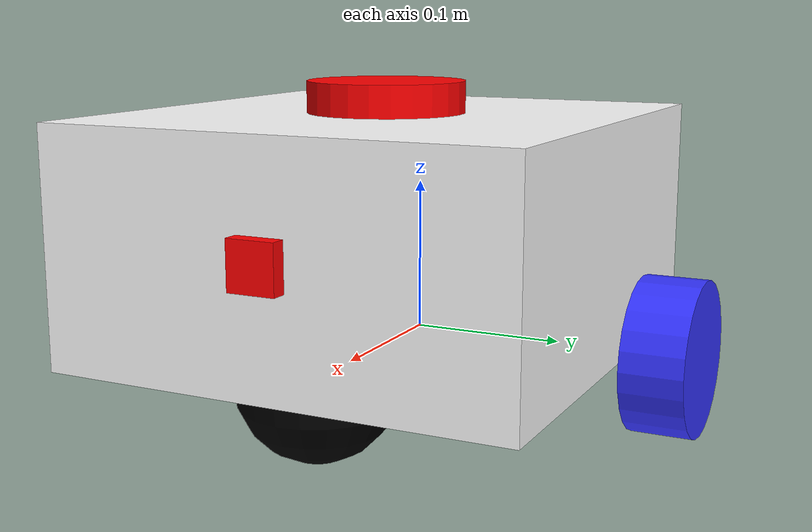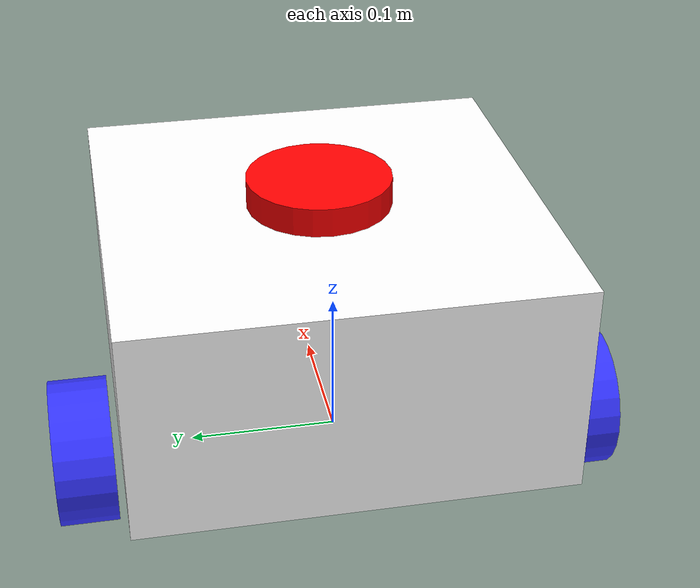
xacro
<?xml version="1.0"?>
<robot xmlns:xacro="http://www.ros.org/wiki/xacro" name="robot">
    <xacro:include filename="robot_core.xacro" />
    <xacro:include filename="lidar.xacro" />
    <xacro:include filename="camera.xacro" />

</robot>

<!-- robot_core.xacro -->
<robot xmlns:xacro="http://www.ros.org/wiki/xacro" >

    <xacro:include filename="inertial_macros.xacro"/>
    <xacro:include filename="materials.xacro"/>

    <!-- BASE LINK -->
    <link name="base_link">
    </link>

    <!-- BASE_FOOTPRINT LINK -->

    <joint name="base_footprint_joint" type="fixed">
        <parent link="base_link"/>
        <child link="base_footprint"/>
        <origin xyz="0 0 0" rpy="0 0 0"/>
    </joint>

    <link name="base_footprint">
    </link>

    <!-- CHASSIS LINK -->

    <joint name="chassis_joint" type="fixed">
        <parent link="base_link"/>
        <child link="chassis"/>
        <origin xyz="-0.1 0 0"/>
    </joint>

    <link name="chassis">
        <visual>
            <origin xyz="0.15 0 0.075"/>
            <geometry>
                <box size="0.3 0.3 0.15"/>
            </geometry>
            <material name="white"/>
        </visual>
        <collision>
            <origin xyz="0.15 0 0.075"/>
            <geometry>
                <box size="0.3 0.3 0.15"/>
            </geometry>
        </collision>
        <xacro:inertial_box mass="0.5" x="0.3" y="0.3" z="0.15">
            <origin xyz="0.15 0 0.075" rpy="0 0 0"/>
        </xacro:inertial_box>

    </link>

    <!-- LEFT WHEEL LINK -->

    <joint name="left_wheel_joint" type="continuous">
        <parent link="base_link"/>
        <child link="left_wheel"/>
        <origin xyz="0 0.175 0" rpy="-${pi/2} 0 0" />
        <axis xyz="0 0 1"/>
    </joint>

    <link name="left_wheel">
        <visual>
            <geometry>
                <cylinder radius="0.05" length="0.04"/>
            </geometry>
            <material name="blue"/>
        </visual>
        <collision>
            <geometry>
                <cylinder radius="0.05" length="0.04"/>
            </geometry>
        </collision>
        <xacro:inertial_cylinder mass="0.1" length="0.04" radius="0.05">
            <origin xyz="0 0 0" rpy="0 0 0"/>
        </xacro:inertial_cylinder>
    </link>

    <!-- RIGHT WHEEL LINK -->

    <joint name="right_wheel_joint" type="continuous">
        <parent link="base_link"/>
        <child link="right_wheel"/>
        <origin xyz="0 -0.175 0" rpy="${pi/2} 0 0" />
        <axis xyz="0 0 -1"/>
    </joint>

    <link name="right_wheel">
        <visual>
            <geometry>
                <cylinder radius="0.05" length="0.04"/>
            </geometry>
            <material name="blue"/>
        </visual>
        <collision>
            <geometry>
                <cylinder radius="0.05" length="0.04"/>
            </geometry>
        </collision>
        <xacro:inertial_cylinder mass="0.1" length="0.04" radius="0.05">
            <origin xyz="0 0 0" rpy="0 0 0"/>
        </xacro:inertial_cylinder>
    </link>

    <!-- CASTER WHEEL LINK -->

    <joint name="caster_wheel_joint" type="fixed">
        <parent link="chassis"/>
        <child link="caster_wheel"/>
        <origin xyz="0.24 0 0"/>
    </joint>

    <link name="caster_wheel">
        <visual>
            <geometry>
                <sphere radius="0.05"/>
            </geometry>
            <material name="black"/>
        </visual>
        <collision>
            <geometry>
                <sphere radius="0.05"/>
            </geometry>
        </collision>
        <xacro:inertial_sphere mass="0.1" radius="0.05">
            <origin xyz="0 0 0" rpy="0 0 0"/>
        </xacro:inertial_sphere>
    </link>

    <gazebo reference="caster_wheel">
        <mu1 value="0.001"/>
        <mu2 value="0.001"/>
    </gazebo>

    <xacro:include filename="ros2_control.xacro" />

</robot>

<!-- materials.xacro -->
<robot xmlns:xacro="http://www.ros.org/wiki/xacro">
    <material name="white">
        <color rgba="1 1 1 1" />
    </material>

    <material name="orange">
        <color rgba="1 0.3 0.1 1"/>
    </material>

    <material name="blue">
        <color rgba="0.2 0.2 1 1"/>
    </material>

    <material name="red">
        <color rgba="1 0 0 1"/>
    </material>

    <material name="black">
        <color rgba="0 0 0 1"/>
    </material>
</robot>

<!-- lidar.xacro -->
<robot xmlns:xacro="http://www.ros.org/wiki/xacro">
    <joint name="lidar_joint" type="fixed">
        <parent link="chassis"/>
        <child link="lidar_frame"/>
        <origin xyz="0.15 0 0.15" rpy="0 0 0"/>
    </joint>
    <link name="lidar_frame">
        <visual>
            <geometry>
                <cylinder radius="0.05" length="0.04"/>
            </geometry>
            <material name="red"/>
        </visual>
        <collision>
            <geometry>
                <cylinder radius="0.05" length="0.04"/>
            </geometry>
        </collision>
        <xacro:inertial_cylinder mass="0.1" length="0.04" radius="0.05">
            <origin xyz="0 0 0" rpy="0 0 0"/>
        </xacro:inertial_cylinder>
    </link>

    <gazebo reference="lidar_frame">
      <sensor name='gpu_lidar' type='gpu_lidar'>
        <topic>scan</topic>
        <update_rate>10</update_rate>
        <lidar>
          <scan>
            <horizontal>
              <samples>640</samples>
              <resolution>1</resolution>
              <min_angle>-3.14</min_angle>
              <max_angle>3.14</max_angle>
            </horizontal>
            <vertical>
              <samples>1</samples>
              <resolution>1</resolution>
              <min_angle>0.0</min_angle>
              <max_angle>0.0</max_angle>
            </vertical>
          </scan>
          <range>
            <min>0.08</min>
            <max>20.0</max>
            <resolution>0.01</resolution>
          </range>
        </lidar>
        <visualize>true</visualize>
      </sensor>
    </gazebo>
</robot>

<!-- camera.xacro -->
<robot xmlns:xacro="http://www.ros.org/wiki/xacro">
    <joint name="camera_joint" type="fixed">
        <parent link="chassis"/>
        <child link="camera_link"/>
        <origin xyz="0.305 0 0.08" rpy="0 0 0"/>
    </joint>

    <link name="camera_link">
        <visual>
            <geometry>
                <box size="0.010 0.03 0.03"/>
            </geometry>
            <material name="red"/>
        </visual>
    </link>            <plugin name="camera_controller" filename="libgazebo_ros_camera.so">
                <frame_name>camera_link_optical</frame_name>
            </plugin>

    <joint name="camera_optical_joint" type="fixed">
        <parent link="camera_link"/>
        <child link="camera_link_optical"/>
        <origin xyz="0 0 0" rpy="${-pi/2} 0 ${-pi/2}"/>
    </joint>

    <link name="camera_link_optical"></link>

    <gazebo reference="camera_link">

        <sensor name="camera" type="camera">
            <pose> 0 0 0 0 0 0 </pose>
            <visualize>true</visualize>
            <update_rate>10</update_rate>
            <camera>
                <horizontal_fov>1.089</horizontal_fov>
                <image>
                    <format>R8G8B8</format>
                    <width>640</width>
                    <height>480</height>
                </image>
                <clip>
                    <near>0.05</near>
                    <far>8.0</far>
                </clip>
            </camera>
        </sensor>
    </gazebo>
</robot>
